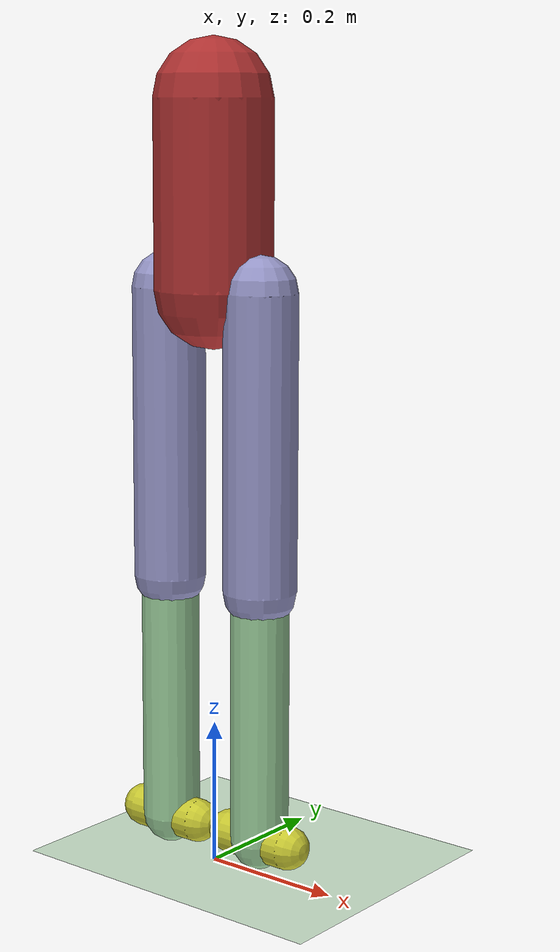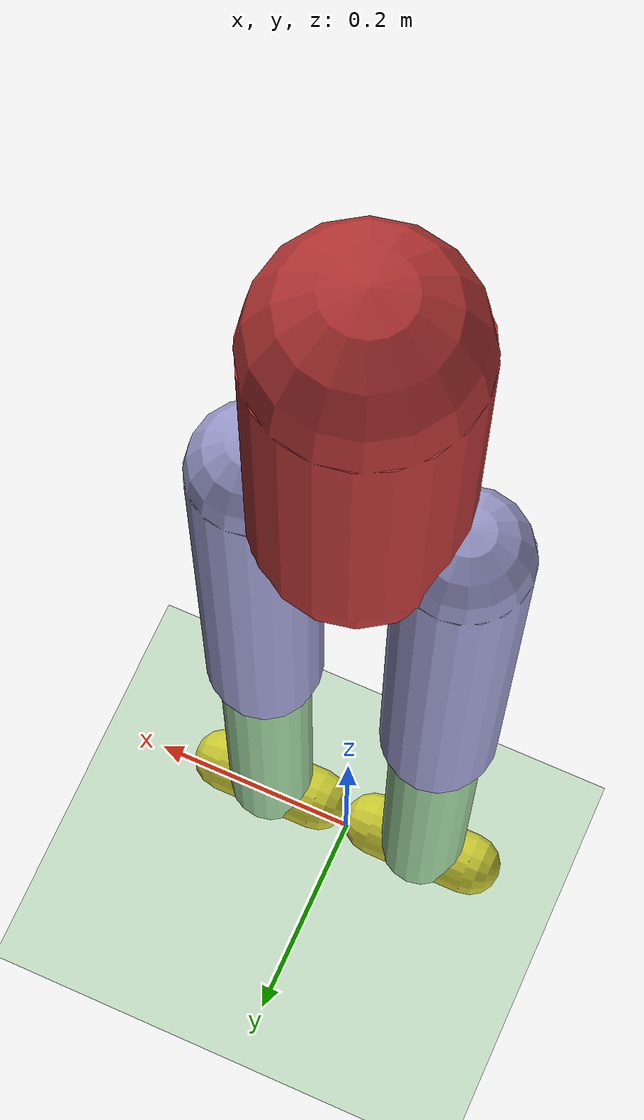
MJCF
<mujoco>
  <option timestep="0.005" iterations="50" tolerance="1e-8"/>

  <default>
    <joint damping="1" armature="0.1" limited="true"/>
    <geom solimp="0.9 0.95 0.001" solref="0.02 1"/>
    <motor ctrlrange="-1 1"/>
  </default>

  <worldbody>
    <light pos="0 2 3" dir="0 -1 -1"/>
    <geom name="floor" type="plane" size="10 10 0.1" rgba="0.8 0.9 0.8 1"/>

    <!-- Торс (тело робота) -->
    <body name="torso" pos="0 0 0.8">
      <freejoint/>  <!-- Вместо joint type="free" -->
      <inertial pos="0 0 0" mass="5" diaginertia="0.1 0.1 0.1"/>
      <geom name="torso_geom" type="capsule" fromto="0 0 0 0 0 0.25" size="0.08" rgba="0.7 0.2 0.2 1"/>

      <!-- Левое бедро -->
      <body name="thigh_left" pos="0.08 0 0">
        <joint name="hip_left" type="hinge" pos="0 0 0" axis="1 0 0" range="-30 30"/>
        <inertial pos="0 0 -0.2" mass="2" diaginertia="0.05 0.05 0.05"/>
        <geom name="thigh_left_geom" type="capsule" fromto="0 0 0 0 0 -0.4" size="0.05" rgba="0.6 0.6 0.8 1"/>

        <!-- Левая голень -->
        <body name="shin_left" pos="0 0 -0.4">
          <joint name="knee_left" type="hinge" pos="0 0 0" axis="1 0 0" range="-60 10"/>
          <inertial pos="0 0 -0.2" mass="1" diaginertia="0.03 0.03 0.03"/>
          <geom name="shin_left_geom" type="capsule" fromto="0 0 0 0 0 -0.35" size="0.04" rgba="0.6 0.8 0.6 1"/>

          <!-- Левая стопа -->
          <body name="foot_left" pos="0 0 -0.35">
            <joint name="ankle_left" type="hinge" pos="0 0 0" axis="1 0 0" range="-20 20"/>
            <geom name="foot_left_geom" type="capsule" fromto="-0.05 0 0 0.05 0 0" size="0.03" rgba="0.8 0.8 0.2 1"/>
          </body>
        </body>
      </body>

      <!-- Правое бедро (зеркально) -->
      <body name="thigh_right" pos="-0.08 0 0">
        <joint name="hip_right" type="hinge" pos="0 0 0" axis="1 0 0" range="-30 30"/>
        <inertial pos="0 0 -0.2" mass="2" diaginertia="0.05 0.05 0.05"/>
        <geom name="thigh_right_geom" type="capsule" fromto="0 0 0 0 0 -0.4" size="0.05" rgba="0.6 0.6 0.8 1"/>

        <!-- Правая голень -->
        <body name="shin_right" pos="0 0 -0.4">
          <joint name="knee_right" type="hinge" pos="0 0 0" axis="1 0 0" range="-60 10"/>
          <inertial pos="0 0 -0.2" mass="1" diaginertia="0.03 0.03 0.03"/>
          <geom name="shin_right_geom" type="capsule" fromto="0 0 0 0 0 -0.35" size="0.04" rgba="0.6 0.8 0.6 1"/>

          <!-- Правая стопа -->
          <body name="foot_right" pos="0 0 -0.35">
            <joint name="ankle_right" type="hinge" pos="0 0 0" axis="1 0 0" range="-20 20"/>
            <geom name="foot_right_geom" type="capsule" fromto="-0.05 0 0 0.05 0 0" size="0.03" rgba="0.8 0.8 0.2 1"/>
          </body>
        </body>
      </body>
    </body>
  </worldbody>

  <actuator>
    <!-- Левая нога -->
    <motor name="hip_left_motor" joint="hip_left" gear="50" ctrllimited="true" ctrlrange="-1 1"/>
    <motor name="knee_left_motor" joint="knee_left" gear="40" ctrllimited="true" ctrlrange="-1 1"/>
    <motor name="ankle_left_motor" joint="ankle_left" gear="20" ctrllimited="true" ctrlrange="-0.5 0.5"/>

    <!-- Правая нога -->
    <motor name="hip_right_motor" joint="hip_right" gear="50" ctrllimited="true" ctrlrange="-1 1"/>
    <motor name="knee_right_motor" joint="knee_right" gear="40" ctrllimited="true" ctrlrange="-1 1"/>
    <motor name="ankle_right_motor" joint="ankle_right" gear="20" ctrllimited="true" ctrlrange="-0.5 0.5"/>
  </actuator>
</mujoco>
